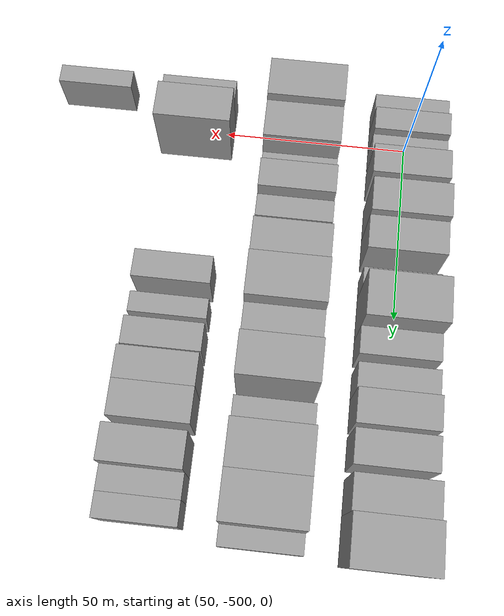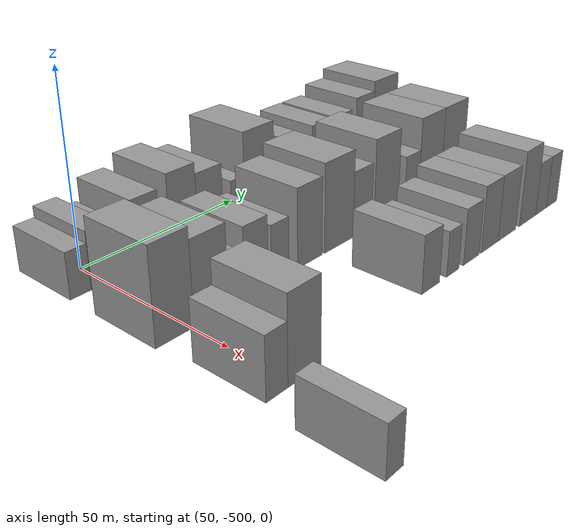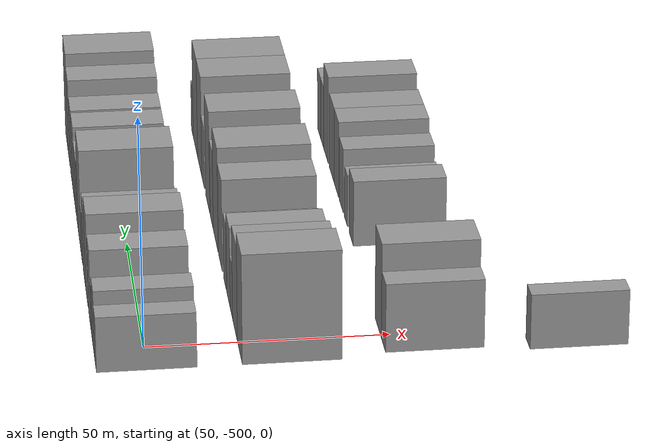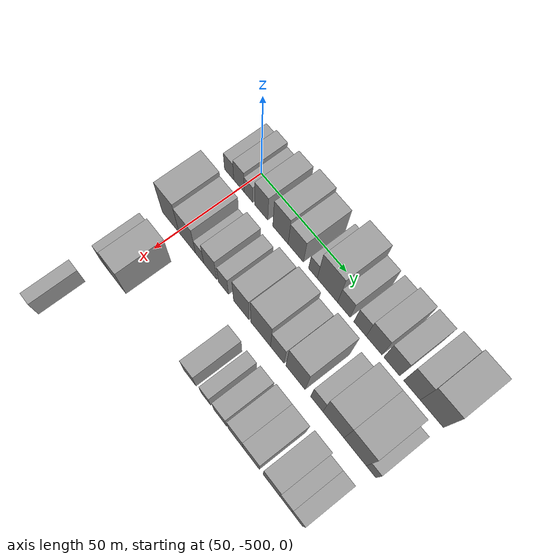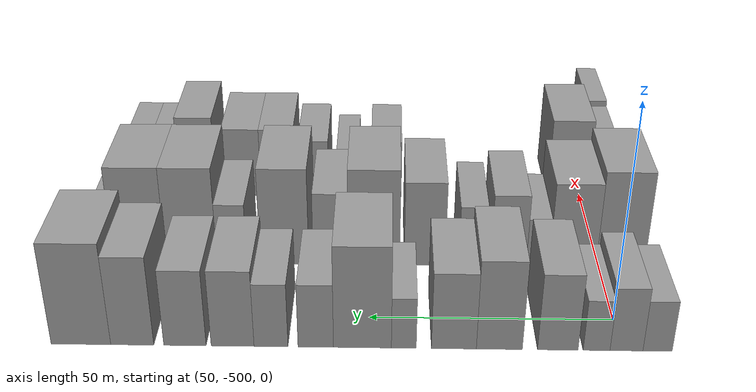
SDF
<sdf version="1.6">
 <world name="default">
  <model name="building_1">
   <static>1</static>
   <pose>50.0000 -507.1129 0 0.000000 0.000000 0.000000</pose>
   <link name="link">
    <pose>0 0 6.00 0 0 0</pose>
    <collision name="collision"><geometry><box><size>20.0000 5.7743 12.0000</size></box></geometry></collision>
    <visual name="visual">
     <cast_shadows>0</cast_shadows>
     <geometry><box><size>20.0000 5.7743 12.0000</size></box></geometry>
     <material>
      <script>
       <uri>model://grey_wall/materials/scripts</uri>
       <uri>model://grey_wall/materials/textures</uri>
       <name>vrc/grey_wall</name>
      </script>
     </material>
    </visual>
   </link>
  </model>
  <model name="building_2">
   <static>1</static>
   <pose>50.0000 -500.9743 0 0.000000 0.000000 0.000000</pose>
   <link name="link">
    <pose>0 0 7.50 0 0 0</pose>
    <collision name="collision"><geometry><box><size>20.0000 6.5029 15.0000</size></box></geometry></collision>
    <visual name="visual">
     <cast_shadows>0</cast_shadows>
     <geometry><box><size>20.0000 6.5029 15.0000</size></box></geometry>
     <material>
      <script>
       <uri>model://grey_wall/materials/scripts</uri>
       <uri>model://grey_wall/materials/textures</uri>
       <name>vrc/grey_wall</name>
      </script>
     </material>
    </visual>
   </link>
  </model>
  <model name="building_3">
   <static>1</static>
   <pose>50.0000 -495.0810 0 0.000000 0.000000 0.000000</pose>
   <link name="link">
    <pose>0 0 6.00 0 0 0</pose>
    <collision name="collision"><geometry><box><size>20.0000 5.2837 12.0000</size></box></geometry></collision>
    <visual name="visual">
     <cast_shadows>0</cast_shadows>
     <geometry><box><size>20.0000 5.2837 12.0000</size></box></geometry>
     <material>
      <script>
       <uri>model://grey_wall/materials/scripts</uri>
       <uri>model://grey_wall/materials/textures</uri>
       <name>vrc/grey_wall</name>
      </script>
     </material>
    </visual>
   </link>
  </model>
  <model name="building_4">
   <static>1</static>
   <pose>50.0000 -487.4331 0 0.000000 0.000000 0.000000</pose>
   <link name="link">
    <pose>0 0 9.00 0 0 0</pose>
    <collision name="collision"><geometry><box><size>20.0000 8.0121 18.0000</size></box></geometry></collision>
    <visual name="visual">
     <cast_shadows>0</cast_shadows>
     <geometry><box><size>20.0000 8.0121 18.0000</size></box></geometry>
     <material>
      <script>
       <uri>model://grey_wall/materials/scripts</uri>
       <uri>model://grey_wall/materials/textures</uri>
       <name>vrc/grey_wall</name>
      </script>
     </material>
    </visual>
   </link>
  </model>
  <model name="building_5">
   <static>1</static>
   <pose>50.0000 -475.8678 0 0.000000 0.000000 0.000000</pose>
   <link name="link">
    <pose>0 0 10.50 0 0 0</pose>
    <collision name="collision"><geometry><box><size>20.0000 9.1184 21.0000</size></box></geometry></collision>
    <visual name="visual">
     <cast_shadows>0</cast_shadows>
     <geometry><box><size>20.0000 9.1184 21.0000</size></box></geometry>
     <material>
      <script>
       <uri>model://grey_wall/materials/scripts</uri>
       <uri>model://grey_wall/materials/textures</uri>
       <name>vrc/grey_wall</name>
      </script>
     </material>
    </visual>
   </link>
  </model>
  <model name="building_6">
   <static>1</static>
   <pose>50.0000 -466.8552 0 0.000000 0.000000 0.000000</pose>
   <link name="link">
    <pose>0 0 9.00 0 0 0</pose>
    <collision name="collision"><geometry><box><size>20.0000 8.9067 18.0000</size></box></geometry></collision>
    <visual name="visual">
     <cast_shadows>0</cast_shadows>
     <geometry><box><size>20.0000 8.9067 18.0000</size></box></geometry>
     <material>
      <script>
       <uri>model://grey_wall/materials/scripts</uri>
       <uri>model://grey_wall/materials/textures</uri>
       <name>vrc/grey_wall</name>
      </script>
     </material>
    </visual>
   </link>
  </model>
  <model name="building_7">
   <static>1</static>
   <pose>50.0000 -456.9294 0 0.000000 0.000000 0.000000</pose>
   <link name="link">
    <pose>0 0 6.00 0 0 0</pose>
    <collision name="collision"><geometry><box><size>20.0000 4.9449 12.0000</size></box></geometry></collision>
    <visual name="visual">
     <cast_shadows>0</cast_shadows>
     <geometry><box><size>20.0000 4.9449 12.0000</size></box></geometry>
     <material>
      <script>
       <uri>model://grey_wall/materials/scripts</uri>
       <uri>model://grey_wall/materials/textures</uri>
       <name>vrc/grey_wall</name>
      </script>
     </material>
    </visual>
   </link>
  </model>
  <model name="building_8">
   <static>1</static>
   <pose>50.0000 -448.7046 0 0.000000 0.000000 0.000000</pose>
   <link name="link">
    <pose>0 0 12.00 0 0 0</pose>
    <collision name="collision"><geometry><box><size>20.0000 11.5046 24.0000</size></box></geometry></collision>
    <visual name="visual">
     <cast_shadows>0</cast_shadows>
     <geometry><box><size>20.0000 11.5046 24.0000</size></box></geometry>
     <material>
      <script>
       <uri>model://grey_wall/materials/scripts</uri>
       <uri>model://grey_wall/materials/textures</uri>
       <name>vrc/grey_wall</name>
      </script>
     </material>
    </visual>
   </link>
  </model>
  <model name="building_9">
   <static>1</static>
   <pose>50.0000 -439.4274 0 0.000000 0.000000 0.000000</pose>
   <link name="link">
    <pose>0 0 7.50 0 0 0</pose>
    <collision name="collision"><geometry><box><size>20.0000 7.0497 15.0000</size></box></geometry></collision>
    <visual name="visual">
     <cast_shadows>0</cast_shadows>
     <geometry><box><size>20.0000 7.0497 15.0000</size></box></geometry>
     <material>
      <script>
       <uri>model://grey_wall/materials/scripts</uri>
       <uri>model://grey_wall/materials/textures</uri>
       <name>vrc/grey_wall</name>
      </script>
     </material>
    </visual>
   </link>
  </model>
  <model name="building_10">
   <static>1</static>
   <pose>50.0000 -430.5206 0 0.000000 0.000000 0.000000</pose>
   <link name="link">
    <pose>0 0 7.50 0 0 0</pose>
    <collision name="collision"><geometry><box><size>20.0000 6.7640 15.0000</size></box></geometry></collision>
    <visual name="visual">
     <cast_shadows>0</cast_shadows>
     <geometry><box><size>20.0000 6.7640 15.0000</size></box></geometry>
     <material>
      <script>
       <uri>model://grey_wall/materials/scripts</uri>
       <uri>model://grey_wall/materials/textures</uri>
       <name>vrc/grey_wall</name>
      </script>
     </material>
    </visual>
   </link>
  </model>
  <model name="building_11">
   <static>1</static>
   <pose>50.0000 -422.8623 0 0.000000 0.000000 0.000000</pose>
   <link name="link">
    <pose>0 0 9.00 0 0 0</pose>
    <collision name="collision"><geometry><box><size>20.0000 8.5525 18.0000</size></box></geometry></collision>
    <visual name="visual">
     <cast_shadows>0</cast_shadows>
     <geometry><box><size>20.0000 8.5525 18.0000</size></box></geometry>
     <material>
      <script>
       <uri>model://grey_wall/materials/scripts</uri>
       <uri>model://grey_wall/materials/textures</uri>
       <name>vrc/grey_wall</name>
      </script>
     </material>
    </visual>
   </link>
  </model>
  <model name="building_12">
   <static>1</static>
   <pose>50.0000 -413.3588 0 0.000000 0.000000 0.000000</pose>
   <link name="link">
    <pose>0 0 9.00 0 0 0</pose>
    <collision name="collision"><geometry><box><size>20.0000 8.4544 18.0000</size></box></geometry></collision>
    <visual name="visual">
     <cast_shadows>0</cast_shadows>
     <geometry><box><size>20.0000 8.4544 18.0000</size></box></geometry>
     <material>
      <script>
       <uri>model://grey_wall/materials/scripts</uri>
       <uri>model://grey_wall/materials/textures</uri>
       <name>vrc/grey_wall</name>
      </script>
     </material>
    </visual>
   </link>
  </model>
  <model name="building_13">
   <static>1</static>
   <pose>50.0000 -402.8247 0 0.000000 0.000000 0.000000</pose>
   <link name="link">
    <pose>0 0 10.50 0 0 0</pose>
    <collision name="collision"><geometry><box><size>20.0000 8.6138 21.0000</size></box></geometry></collision>
    <visual name="visual">
     <cast_shadows>0</cast_shadows>
     <geometry><box><size>20.0000 8.6138 21.0000</size></box></geometry>
     <material>
      <script>
       <uri>model://grey_wall/materials/scripts</uri>
       <uri>model://grey_wall/materials/textures</uri>
       <name>vrc/grey_wall</name>
      </script>
     </material>
    </visual>
   </link>
  </model>
  <model name="building_14">
   <static>1</static>
   <pose>50.0000 -392.5506 0 0.000000 0.000000 0.000000</pose>
   <link name="link">
    <pose>0 0 12.00 0 0 0</pose>
    <collision name="collision"><geometry><box><size>20.0000 11.9344 24.0000</size></box></geometry></collision>
    <visual name="visual">
     <cast_shadows>0</cast_shadows>
     <geometry><box><size>20.0000 11.9344 24.0000</size></box></geometry>
     <material>
      <script>
       <uri>model://grey_wall/materials/scripts</uri>
       <uri>model://grey_wall/materials/textures</uri>
       <name>vrc/grey_wall</name>
      </script>
     </material>
    </visual>
   </link>
  </model>
  <model name="building_108">
   <static>1</static>
   <pose>79.0000 -504.6940 0 0.000000 0.000000 0.000000</pose>
   <link name="link">
    <pose>0 0 12.00 0 0 0</pose>
    <collision name="collision"><geometry><box><size>20.0000 10.6121 24.0000</size></box></geometry></collision>
    <visual name="visual">
     <cast_shadows>0</cast_shadows>
     <geometry><box><size>20.0000 10.6121 24.0000</size></box></geometry>
     <material>
      <script>
       <uri>model://grey_wall/materials/scripts</uri>
       <uri>model://grey_wall/materials/textures</uri>
       <name>vrc/grey_wall</name>
      </script>
     </material>
    </visual>
   </link>
  </model>
  <model name="building_109">
   <static>1</static>
   <pose>79.0000 -494.2660 0 0.000000 0.000000 0.000000</pose>
   <link name="link">
    <pose>0 0 10.50 0 0 0</pose>
    <collision name="collision"><geometry><box><size>20.0000 10.2439 21.0000</size></box></geometry></collision>
    <visual name="visual">
     <cast_shadows>0</cast_shadows>
     <geometry><box><size>20.0000 10.2439 21.0000</size></box></geometry>
     <material>
      <script>
       <uri>model://grey_wall/materials/scripts</uri>
       <uri>model://grey_wall/materials/textures</uri>
       <name>vrc/grey_wall</name>
      </script>
     </material>
    </visual>
   </link>
  </model>
  <model name="building_110">
   <static>1</static>
   <pose>79.0000 -486.6266 0 0.000000 0.000000 0.000000</pose>
   <link name="link">
    <pose>0 0 6.00 0 0 0</pose>
    <collision name="collision"><geometry><box><size>20.0000 5.0349 12.0000</size></box></geometry></collision>
    <visual name="visual">
     <cast_shadows>0</cast_shadows>
     <geometry><box><size>20.0000 5.0349 12.0000</size></box></geometry>
     <material>
      <script>
       <uri>model://grey_wall/materials/scripts</uri>
       <uri>model://grey_wall/materials/textures</uri>
       <name>vrc/grey_wall</name>
      </script>
     </material>
    </visual>
   </link>
  </model>
  <model name="building_111">
   <static>1</static>
   <pose>79.0000 -480.2095 0 0.000000 0.000000 0.000000</pose>
   <link name="link">
    <pose>0 0 9.00 0 0 0</pose>
    <collision name="collision"><geometry><box><size>20.0000 7.7994 18.0000</size></box></geometry></collision>
    <visual name="visual">
     <cast_shadows>0</cast_shadows>
     <geometry><box><size>20.0000 7.7994 18.0000</size></box></geometry>
     <material>
      <script>
       <uri>model://grey_wall/materials/scripts</uri>
       <uri>model://grey_wall/materials/textures</uri>
       <name>vrc/grey_wall</name>
      </script>
     </material>
    </visual>
   </link>
  </model>
  <model name="building_112">
   <static>1</static>
   <pose>79.0000 -472.3011 0 0.000000 0.000000 0.000000</pose>
   <link name="link">
    <pose>0 0 7.50 0 0 0</pose>
    <collision name="collision"><geometry><box><size>20.0000 6.0173 15.0000</size></box></geometry></collision>
    <visual name="visual">
     <cast_shadows>0</cast_shadows>
     <geometry><box><size>20.0000 6.0173 15.0000</size></box></geometry>
     <material>
      <script>
       <uri>model://grey_wall/materials/scripts</uri>
       <uri>model://grey_wall/materials/textures</uri>
       <name>vrc/grey_wall</name>
      </script>
     </material>
    </visual>
   </link>
  </model>
  <model name="building_113">
   <static>1</static>
   <pose>79.0000 -461.7940 0 0.000000 0.000000 0.000000</pose>
   <link name="link">
    <pose>0 0 10.50 0 0 0</pose>
    <collision name="collision"><geometry><box><size>20.0000 8.9969 21.0000</size></box></geometry></collision>
    <visual name="visual">
     <cast_shadows>0</cast_shadows>
     <geometry><box><size>20.0000 8.9969 21.0000</size></box></geometry>
     <material>
      <script>
       <uri>model://grey_wall/materials/scripts</uri>
       <uri>model://grey_wall/materials/textures</uri>
       <name>vrc/grey_wall</name>
      </script>
     </material>
    </visual>
   </link>
  </model>
  <model name="building_114">
   <static>1</static>
   <pose>79.0000 -450.5983 0 0.000000 0.000000 0.000000</pose>
   <link name="link">
    <pose>0 0 12.00 0 0 0</pose>
    <collision name="collision"><geometry><box><size>20.0000 11.3943 24.0000</size></box></geometry></collision>
    <visual name="visual">
     <cast_shadows>0</cast_shadows>
     <geometry><box><size>20.0000 11.3943 24.0000</size></box></geometry>
     <material>
      <script>
       <uri>model://grey_wall/materials/scripts</uri>
       <uri>model://grey_wall/materials/textures</uri>
       <name>vrc/grey_wall</name>
      </script>
     </material>
    </visual>
   </link>
  </model>
  <model name="building_115">
   <static>1</static>
   <pose>79.0000 -441.0901 0 0.000000 0.000000 0.000000</pose>
   <link name="link">
    <pose>0 0 9.00 0 0 0</pose>
    <collision name="collision"><geometry><box><size>20.0000 7.6221 18.0000</size></box></geometry></collision>
    <visual name="visual">
     <cast_shadows>0</cast_shadows>
     <geometry><box><size>20.0000 7.6221 18.0000</size></box></geometry>
     <material>
      <script>
       <uri>model://grey_wall/materials/scripts</uri>
       <uri>model://grey_wall/materials/textures</uri>
       <name>vrc/grey_wall</name>
      </script>
     </material>
    </visual>
   </link>
  </model>
  <model name="building_116">
   <static>1</static>
   <pose>79.0000 -430.9364 0 0.000000 0.000000 0.000000</pose>
   <link name="link">
    <pose>0 0 12.00 0 0 0</pose>
    <collision name="collision"><geometry><box><size>20.0000 10.6853 24.0000</size></box></geometry></collision>
    <visual name="visual">
     <cast_shadows>0</cast_shadows>
     <geometry><box><size>20.0000 10.6853 24.0000</size></box></geometry>
     <material>
      <script>
       <uri>model://grey_wall/materials/scripts</uri>
       <uri>model://grey_wall/materials/textures</uri>
       <name>vrc/grey_wall</name>
      </script>
     </material>
    </visual>
   </link>
  </model>
  <model name="building_117">
   <static>1</static>
   <pose>79.0000 -419.2947 0 0.000000 0.000000 0.000000</pose>
   <link name="link">
    <pose>0 0 7.50 0 0 0</pose>
    <collision name="collision"><geometry><box><size>20.0000 6.5981 15.0000</size></box></geometry></collision>
    <visual name="visual">
     <cast_shadows>0</cast_shadows>
     <geometry><box><size>20.0000 6.5981 15.0000</size></box></geometry>
     <material>
      <script>
       <uri>model://grey_wall/materials/scripts</uri>
       <uri>model://grey_wall/materials/textures</uri>
       <name>vrc/grey_wall</name>
      </script>
     </material>
    </visual>
   </link>
  </model>
  <model name="building_118">
   <static>1</static>
   <pose>79.0000 -410.3616 0 0.000000 0.000000 0.000000</pose>
   <link name="link">
    <pose>0 0 12.00 0 0 0</pose>
    <collision name="collision"><geometry><box><size>20.0000 11.2680 24.0000</size></box></geometry></collision>
    <visual name="visual">
     <cast_shadows>0</cast_shadows>
     <geometry><box><size>20.0000 11.2680 24.0000</size></box></geometry>
     <material>
      <script>
       <uri>model://grey_wall/materials/scripts</uri>
       <uri>model://grey_wall/materials/textures</uri>
       <name>vrc/grey_wall</name>
      </script>
     </material>
    </visual>
   </link>
  </model>
  <model name="building_119">
   <static>1</static>
   <pose>79.0000 -398.9051 0 0.000000 0.000000 0.000000</pose>
   <link name="link">
    <pose>0 0 12.00 0 0 0</pose>
    <collision name="collision"><geometry><box><size>20.0000 11.6450 24.0000</size></box></geometry></collision>
    <visual name="visual">
     <cast_shadows>0</cast_shadows>
     <geometry><box><size>20.0000 11.6450 24.0000</size></box></geometry>
     <material>
      <script>
       <uri>model://grey_wall/materials/scripts</uri>
       <uri>model://grey_wall/materials/textures</uri>
       <name>vrc/grey_wall</name>
      </script>
     </material>
    </visual>
   </link>
  </model>
  <model name="building_120">
   <static>1</static>
   <pose>79.0000 -390.5866 0 0.000000 0.000000 0.000000</pose>
   <link name="link">
    <pose>0 0 6.00 0 0 0</pose>
    <collision name="collision"><geometry><box><size>20.0000 4.9921 12.0000</size></box></geometry></collision>
    <visual name="visual">
     <cast_shadows>0</cast_shadows>
     <geometry><box><size>20.0000 4.9921 12.0000</size></box></geometry>
     <material>
      <script>
       <uri>model://grey_wall/materials/scripts</uri>
       <uri>model://grey_wall/materials/textures</uri>
       <name>vrc/grey_wall</name>
      </script>
     </material>
    </visual>
   </link>
  </model>
  <model name="building_221">
   <static>1</static>
   <pose>108.0000 -504.9345 0 0.000000 0.000000 0.000000</pose>
   <link name="link">
    <pose>0 0 7.50 0 0 0</pose>
    <collision name="collision"><geometry><box><size>20.0000 6.1309 15.0000</size></box></geometry></collision>
    <visual name="visual">
     <cast_shadows>0</cast_shadows>
     <geometry><box><size>20.0000 6.1309 15.0000</size></box></geometry>
     <material>
      <script>
       <uri>model://grey_wall/materials/scripts</uri>
       <uri>model://grey_wall/materials/textures</uri>
       <name>vrc/grey_wall</name>
      </script>
     </material>
    </visual>
   </link>
  </model>
  <model name="building_222">
   <static>1</static>
   <pose>108.0000 -496.9784 0 0.000000 0.000000 0.000000</pose>
   <link name="link">
    <pose>0 0 10.50 0 0 0</pose>
    <collision name="collision"><geometry><box><size>20.0000 9.7813 21.0000</size></box></geometry></collision>
    <visual name="visual">
     <cast_shadows>0</cast_shadows>
     <geometry><box><size>20.0000 9.7813 21.0000</size></box></geometry>
     <material>
      <script>
       <uri>model://grey_wall/materials/scripts</uri>
       <uri>model://grey_wall/materials/textures</uri>
       <name>vrc/grey_wall</name>
      </script>
     </material>
    </visual>
   </link>
  </model>
  <model name="building_223">
   <static>1</static>
   <pose>108.0000 -453.2452 0 0.000000 0.000000 0.000000</pose>
   <link name="link">
    <pose>0 0 7.50 0 0 0</pose>
    <collision name="collision"><geometry><box><size>20.0000 7.2284 15.0000</size></box></geometry></collision>
    <visual name="visual">
     <cast_shadows>0</cast_shadows>
     <geometry><box><size>20.0000 7.2284 15.0000</size></box></geometry>
     <material>
      <script>
       <uri>model://grey_wall/materials/scripts</uri>
       <uri>model://grey_wall/materials/textures</uri>
       <name>vrc/grey_wall</name>
      </script>
     </material>
    </visual>
   </link>
  </model>
  <model name="building_224">
   <static>1</static>
   <pose>108.0000 -443.9686 0 0.000000 0.000000 0.000000</pose>
   <link name="link">
    <pose>0 0 6.00 0 0 0</pose>
    <collision name="collision"><geometry><box><size>20.0000 5.3249 12.0000</size></box></geometry></collision>
    <visual name="visual">
     <cast_shadows>0</cast_shadows>
     <geometry><box><size>20.0000 5.3249 12.0000</size></box></geometry>
     <material>
      <script>
       <uri>model://grey_wall/materials/scripts</uri>
       <uri>model://grey_wall/materials/textures</uri>
       <name>vrc/grey_wall</name>
      </script>
     </material>
    </visual>
   </link>
  </model>
  <model name="building_225">
   <static>1</static>
   <pose>108.0000 -435.7074 0 0.000000 0.000000 0.000000</pose>
   <link name="link">
    <pose>0 0 7.50 0 0 0</pose>
    <collision name="collision"><geometry><box><size>20.0000 7.1974 15.0000</size></box></geometry></collision>
    <visual name="visual">
     <cast_shadows>0</cast_shadows>
     <geometry><box><size>20.0000 7.1974 15.0000</size></box></geometry>
     <material>
      <script>
       <uri>model://grey_wall/materials/scripts</uri>
       <uri>model://grey_wall/materials/textures</uri>
       <name>vrc/grey_wall</name>
      </script>
     </material>
    </visual>
   </link>
  </model>
  <model name="building_226">
   <static>1</static>
   <pose>108.0000 -427.0299 0 0.000000 0.000000 0.000000</pose>
   <link name="link">
    <pose>0 0 9.00 0 0 0</pose>
    <collision name="collision"><geometry><box><size>20.0000 8.1577 18.0000</size></box></geometry></collision>
    <visual name="visual">
     <cast_shadows>0</cast_shadows>
     <geometry><box><size>20.0000 8.1577 18.0000</size></box></geometry>
     <material>
      <script>
       <uri>model://grey_wall/materials/scripts</uri>
       <uri>model://grey_wall/materials/textures</uri>
       <name>vrc/grey_wall</name>
      </script>
     </material>
    </visual>
   </link>
  </model>
  <model name="building_227">
   <static>1</static>
   <pose>108.0000 -418.5067 0 0.000000 0.000000 0.000000</pose>
   <link name="link">
    <pose>0 0 9.00 0 0 0</pose>
    <collision name="collision"><geometry><box><size>20.0000 8.8886 18.0000</size></box></geometry></collision>
    <visual name="visual">
     <cast_shadows>0</cast_shadows>
     <geometry><box><size>20.0000 8.8886 18.0000</size></box></geometry>
     <material>
      <script>
       <uri>model://grey_wall/materials/scripts</uri>
       <uri>model://grey_wall/materials/textures</uri>
       <name>vrc/grey_wall</name>
      </script>
     </material>
    </visual>
   </link>
  </model>
  <model name="building_228">
   <static>1</static>
   <pose>108.0000 -407.6930 0 0.000000 0.000000 0.000000</pose>
   <link name="link">
    <pose>0 0 10.50 0 0 0</pose>
    <collision name="collision"><geometry><box><size>20.0000 8.7388 21.0000</size></box></geometry></collision>
    <visual name="visual">
     <cast_shadows>0</cast_shadows>
     <geometry><box><size>20.0000 8.7388 21.0000</size></box></geometry>
     <material>
      <script>
       <uri>model://grey_wall/materials/scripts</uri>
       <uri>model://grey_wall/materials/textures</uri>
       <name>vrc/grey_wall</name>
      </script>
     </material>
    </visual>
   </link>
  </model>
  <model name="building_229">
   <static>1</static>
   <pose>108.0000 -400.2310 0 0.000000 0.000000 0.000000</pose>
   <link name="link">
    <pose>0 0 7.50 0 0 0</pose>
    <collision name="collision"><geometry><box><size>20.0000 6.1852 15.0000</size></box></geometry></collision>
    <visual name="visual">
     <cast_shadows>0</cast_shadows>
     <geometry><box><size>20.0000 6.1852 15.0000</size></box></geometry>
     <material>
      <script>
       <uri>model://grey_wall/materials/scripts</uri>
       <uri>model://grey_wall/materials/textures</uri>
       <name>vrc/grey_wall</name>
      </script>
     </material>
    </visual>
   </link>
  </model>
  <model name="building_230">
   <static>1</static>
   <pose>108.0000 -394.1284 0 0.000000 0.000000 0.000000</pose>
   <link name="link">
    <pose>0 0 7.50 0 0 0</pose>
    <collision name="collision"><geometry><box><size>20.0000 6.0199 15.0000</size></box></geometry></collision>
    <visual name="visual">
     <cast_shadows>0</cast_shadows>
     <geometry><box><size>20.0000 6.0199 15.0000</size></box></geometry>
     <material>
      <script>
       <uri>model://grey_wall/materials/scripts</uri>
       <uri>model://grey_wall/materials/textures</uri>
       <name>vrc/grey_wall</name>
      </script>
     </material>
    </visual>
   </link>
  </model>
  <model name="building_328">
   <static>1</static>
   <pose>137.0000 -507.4512 0 0.000000 0.000000 0.000000</pose>
   <link name="link">
    <pose>0 0 6.00 0 0 0</pose>
    <collision name="collision"><geometry><box><size>20.0000 5.0975 12.0000</size></box></geometry></collision>
    <visual name="visual">
     <cast_shadows>0</cast_shadows>
     <geometry><box><size>20.0000 5.0975 12.0000</size></box></geometry>
     <material>
      <script>
       <uri>model://grey_wall/materials/scripts</uri>
       <uri>model://grey_wall/materials/textures</uri>
       <name>vrc/grey_wall</name>
      </script>
     </material>
    </visual>
   </link>
  </model>
 </world>
</sdf>
